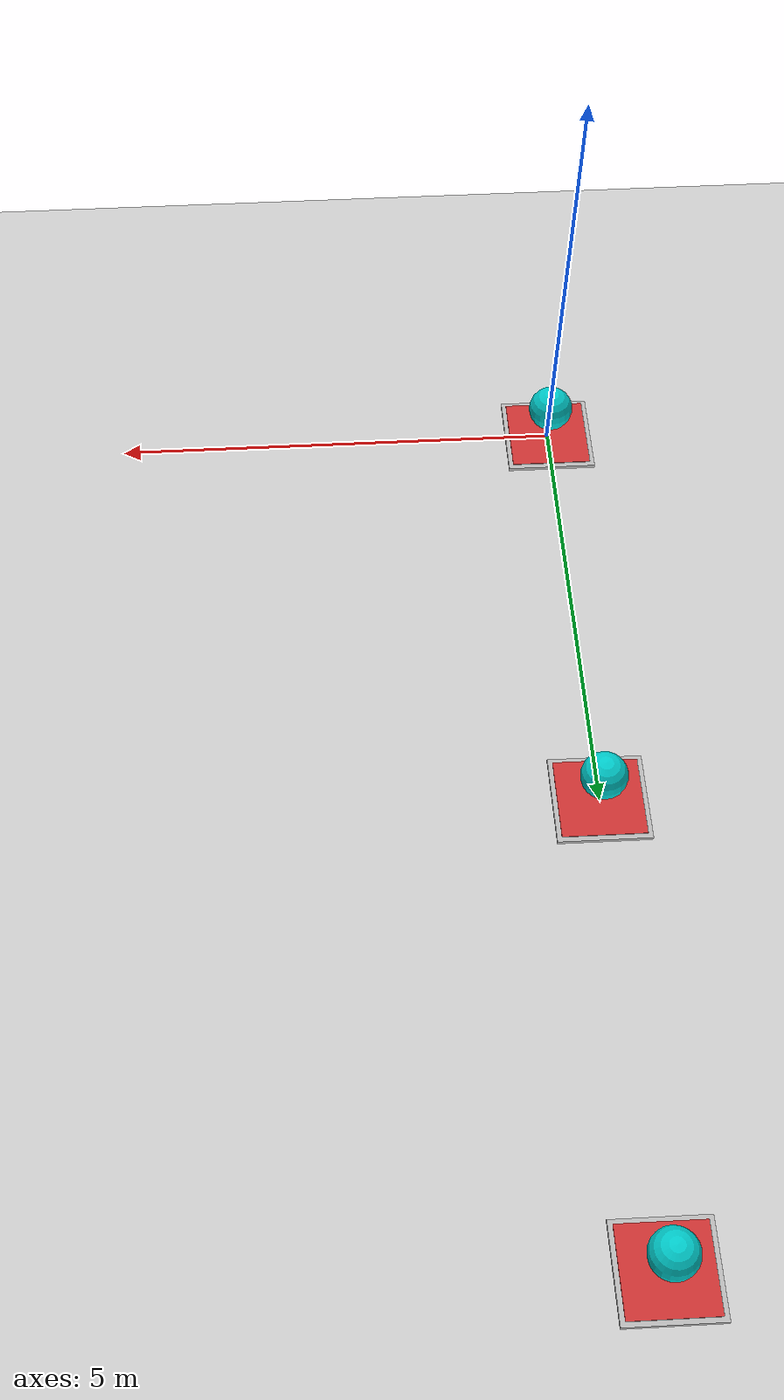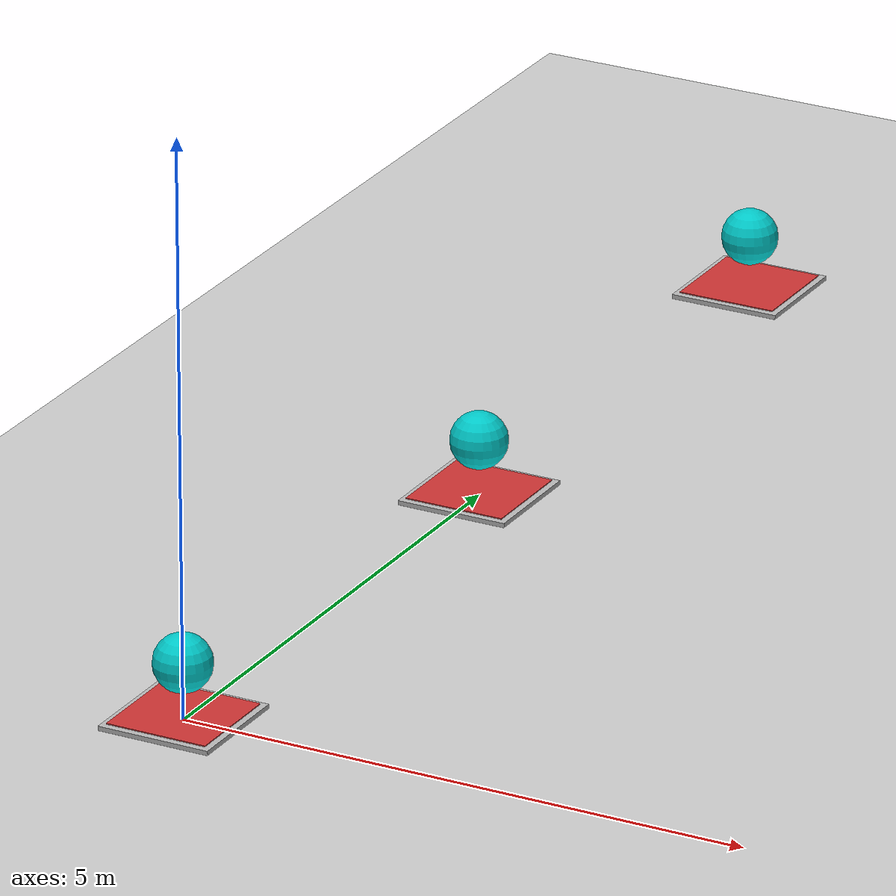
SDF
<?xml version="1.0" ?>
<sdf version="1.9">
  <world name="force_torque">
    <physics name="fast" type="ignored">
      <real_time_factor>0</real_time_factor>
    </physics>
    <plugin filename="gz-sim-physics-system" name="gz::sim::systems::Physics" />
    <plugin filename="gz-sim-forcetorque-system" name="gz::sim::systems::ForceTorque"/>
    <plugin filename='gz-sim-scene-broadcaster-system' name='gz::sim::systems::SceneBroadcaster' />
    <model name="ground_plane">
      <static>true</static>
      <link name="link">
        <collision name="collision">
          <geometry>
            <plane>
              <normal>0 0 1</normal>
              <size>100 100</size>
            </plane>
          </geometry>
        </collision>
        <visual name="visual">
          <geometry>
            <plane>
              <normal>0 0 1</normal>
              <size>100 100</size>
            </plane>
          </geometry>
          <material>
            <ambient>0.8 0.8 0.8 1</ambient>
            <diffuse>0.8 0.8 0.8 1</diffuse>
            <specular>0.8 0.8 0.8 1</specular>
            <emissive>0.8 0.8 0.8 1</emissive>
          </material>
        </visual>
      </link>
    </model>
    <light type="directional" name="sun">
      <cast_shadows>true</cast_shadows>
      <pose>0 0 10 0 0 0</pose>
      <diffuse>1 1 1 1</diffuse>
      <specular>0.5 0.5 0.5 1</specular>
      <attenuation>
        <range>1000</range>
        <constant>0.9</constant>
        <linear>0.01</linear>
        <quadratic>0.001</quadratic>
      </attenuation>
      <direction>-0.5 0.1 -0.9</direction>
    </light>

    <model name="test1">
      <model name="scale">
        <pose>0 0 0.02   0 0 0</pose>
        <link name="base">
          <inertial>
            <mass>2.0</mass>
            <inertia>
              <ixx>0.166933</ixx>
              <iyy>0.166933</iyy>
              <izz>0.333333</izz>
            </inertia>
          </inertial>
          <visual name="v1">
            <geometry>
              <box>
                <size>1 1 0.04</size>
              </box>
            </geometry>
          </visual>
          <collision name="c1">
            <pose>0.5 0.5 -0.01  0 0 0</pose>
            <geometry>
              <sphere>
                <radius>0.01</radius>
              </sphere>
            </geometry>
          </collision>
          <collision name="c2">
            <pose>0.5 -0.5 -0.01  0 0 0</pose>
            <geometry>
              <sphere>
                <radius>0.01</radius>
              </sphere>
            </geometry>
          </collision>
          <collision name="c3">
            <pose>-0.5 -0.5 -0.01  0 0 0</pose>
            <geometry>
              <sphere>
                <radius>0.01</radius>
              </sphere>
            </geometry>
          </collision>
          <collision name="c4">
            <pose>-0.5 0.5 -0.01  0 0 0</pose>
            <geometry>
              <sphere>
                <radius>0.01</radius>
              </sphere>
            </geometry>
          </collision>
        </link>
        <link name="sensor_plate">
          <pose relative_to="base">0 0 0.03   0 0 0</pose>
          <inertial>
            <mass>0.2</mass>
            <inertia>
              <ixx>0.0166933</ixx>
              <iyy>0.0166933</iyy>
              <izz>0.0333333</izz>
            </inertia>
          </inertial>
          <visual name="v1">
            <geometry>
              <box>
                <size>0.9 0.9 0.01</size>
              </box>
            </geometry>
            <material>
              <ambient>0.8 0.2 0.2 1</ambient>
              <diffuse>0.8 0.2 0.2 1</diffuse>
              <specular>0.8 0.2 0.2 1</specular>
            </material>
          </visual>
          <collision name="c1">
            <geometry>
              <box>
                <size>0.9 0.9 0.01</size>
              </box>
            </geometry>
          </collision>
        </link>

        <joint name="sensor_joint" type="fixed">
          <parent>base</parent>
          <child>sensor_plate</child>
          <sensor name="force_torque_sensor" type="force_torque">
            <update_rate>100</update_rate>
            <always_on>true</always_on>
            <visualize>true</visualize>
            <topic>force_torque1</topic>
            <force_torque>
              <frame>sensor</frame>
              <measure_direction>parent_to_child</measure_direction>
            </force_torque>
          </sensor>
        </joint>
      </model>

      <model name="weight">
        <pose>0 0 0.5   0 0 0</pose>
        <link name="base">
          <inertial>
            <mass>10</mass>
          </inertial>
          <visual name="v1">
            <geometry>
              <sphere>
                <radius>0.25</radius>
              </sphere>
            </geometry>
            <material>
              <ambient>0.0 0.8 0.8 1</ambient>
              <diffuse>0.0 0.8 0.8 1</diffuse>
              <specular>0.0 0.8 0.8 1</specular>
            </material>
          </visual>
          <collision name="c1">
            <geometry>
              <sphere>
                <radius>0.25</radius>
              </sphere>
            </geometry>
          </collision>
        </link>
      </model>
    </model>

    <model name="test2">
      <pose>0 5 0   0 0 0</pose>
      <model name="scale">
        <pose>0 0 0.02   0 0 0</pose>
        <link name="base">
          <inertial>
            <mass>2.0</mass>
            <inertia>
              <ixx>0.166933</ixx>
              <iyy>0.166933</iyy>
              <izz>0.333333</izz>
            </inertia>
          </inertial>
          <visual name="v1">
            <geometry>
              <box>
                <size>1 1 0.04</size>
              </box>
            </geometry>
          </visual>
          <collision name="c1">
            <pose>0.5 0.5 -0.01  0 0 0</pose>
            <geometry>
              <sphere>
                <radius>0.01</radius>
              </sphere>
            </geometry>
          </collision>
          <collision name="c2">
            <pose>0.5 -0.5 -0.01  0 0 0</pose>
            <geometry>
              <sphere>
                <radius>0.01</radius>
              </sphere>
            </geometry>
          </collision>
          <collision name="c3">
            <pose>-0.5 -0.5 -0.01  0 0 0</pose>
            <geometry>
              <sphere>
                <radius>0.01</radius>
              </sphere>
            </geometry>
          </collision>
          <collision name="c4">
            <pose>-0.5 0.5 -0.01  0 0 0</pose>
            <geometry>
              <sphere>
                <radius>0.01</radius>
              </sphere>
            </geometry>
          </collision>
        </link>
        <link name="sensor_plate">
          <pose relative_to="base">0 0 0.03   0 0 0</pose>
          <inertial>
            <mass>0.2</mass>
            <inertia>
              <ixx>0.0166933</ixx>
              <iyy>0.0166933</iyy>
              <izz>0.0333333</izz>
            </inertia>
          </inertial>
          <visual name="v1">
            <geometry>
              <box>
                <size>0.9 0.9 0.01</size>
              </box>
            </geometry>
            <material>
              <ambient>0.8 0.2 0.2 1</ambient>
              <diffuse>0.8 0.2 0.2 1</diffuse>
              <specular>0.8 0.2 0.2 1</specular>
            </material>
          </visual>
          <collision name="c1">
            <geometry>
              <box>
                <size>0.9 0.9 0.01</size>
              </box>
            </geometry>
          </collision>
        </link>

        <joint name="sensor_joint" type="fixed">
          <parent>base</parent>
          <child>sensor_plate</child>
          <sensor name="force_torque_sensor" type="force_torque">
            <pose>0.1 0 0  0 0 0</pose>
            <update_rate>100</update_rate>
            <always_on>true</always_on>
            <visualize>true</visualize>
            <topic>force_torque2</topic>
            <force_torque>
              <frame>sensor</frame>
              <measure_direction>parent_to_child</measure_direction>
            </force_torque>
          </sensor>
        </joint>
      </model>

      <model name="weight">
        <pose>0 0 0.5   0 0 0</pose>
        <link name="base">
          <inertial>
            <mass>10</mass>
          </inertial>
          <visual name="v1">
            <geometry>
              <sphere>
                <radius>0.25</radius>
              </sphere>
            </geometry>
            <material>
              <ambient>0.0 0.8 0.8 1</ambient>
              <diffuse>0.0 0.8 0.8 1</diffuse>
              <specular>0.0 0.8 0.8 1</specular>
            </material>
          </visual>
          <collision name="c1">
            <geometry>
              <sphere>
                <radius>0.25</radius>
              </sphere>
            </geometry>
          </collision>
        </link>
      </model>
    </model>

    <model name="test3">
      <pose>0 10 0   0 0 0</pose>
      <model name="scale">
        <pose>0 0 0.02   0 0 0</pose>
        <link name="base">
          <inertial>
            <mass>2.0</mass>
            <inertia>
              <ixx>0.166933</ixx>
              <iyy>0.166933</iyy>
              <izz>0.333333</izz>
            </inertia>
          </inertial>
          <visual name="v1">
            <geometry>
              <box>
                <size>1 1 0.04</size>
              </box>
            </geometry>
          </visual>
          <collision name="c1">
            <pose>0.5 0.5 -0.01  0 0 0</pose>
            <geometry>
              <sphere>
                <radius>0.01</radius>
              </sphere>
            </geometry>
          </collision>
          <collision name="c2">
            <pose>0.5 -0.5 -0.01  0 0 0</pose>
            <geometry>
              <sphere>
                <radius>0.01</radius>
              </sphere>
            </geometry>
          </collision>
          <collision name="c3">
            <pose>-0.5 -0.5 -0.01  0 0 0</pose>
            <geometry>
              <sphere>
                <radius>0.01</radius>
              </sphere>
            </geometry>
          </collision>
          <collision name="c4">
            <pose>-0.5 0.5 -0.01  0 0 0</pose>
            <geometry>
              <sphere>
                <radius>0.01</radius>
              </sphere>
            </geometry>
          </collision>
        </link>
        <link name="sensor_plate">
          <pose relative_to="base">0 0 0.03   0 0 0</pose>
          <inertial>
            <mass>0.2</mass>
            <inertia>
              <ixx>0.0166933</ixx>
              <iyy>0.0166933</iyy>
              <izz>0.0333333</izz>
            </inertia>
          </inertial>
          <visual name="v1">
            <geometry>
              <box>
                <size>0.9 0.9 0.01</size>
              </box>
            </geometry>
            <material>
              <ambient>0.8 0.2 0.2 1</ambient>
              <diffuse>0.8 0.2 0.2 1</diffuse>
              <specular>0.8 0.2 0.2 1</specular>
            </material>
          </visual>
          <collision name="c1">
            <geometry>
              <box>
                <size>0.9 0.9 0.01</size>
              </box>
            </geometry>
          </collision>
        </link>

        <joint name="sensor_joint" type="fixed">
          <parent>base</parent>
          <child>sensor_plate</child>
          <sensor name="force_torque_sensor" type="force_torque">
            <pose degrees="true">0 0 0.0   30 0 0</pose>
            <update_rate>100</update_rate>
            <always_on>true</always_on>
            <visualize>true</visualize>
            <topic>force_torque3</topic>
            <force_torque>
              <frame>child</frame>
              <measure_direction>parent_to_child</measure_direction>
            </force_torque>
          </sensor>
        </joint>
      </model>

      <model name="weight">
        <pose>0 0 0.5   0 0 0</pose>
        <link name="base">
          <inertial>
            <mass>10</mass>
          </inertial>
          <visual name="v1">
            <geometry>
              <sphere>
                <radius>0.25</radius>
              </sphere>
            </geometry>
            <material>
              <ambient>0.0 0.8 0.8 1</ambient>
              <diffuse>0.0 0.8 0.8 1</diffuse>
              <specular>0.0 0.8 0.8 1</specular>
            </material>
          </visual>
          <collision name="c1">
            <geometry>
              <sphere>
                <radius>0.25</radius>
              </sphere>
            </geometry>
          </collision>
        </link>
      </model>
    </model>
  </world>
</sdf>
